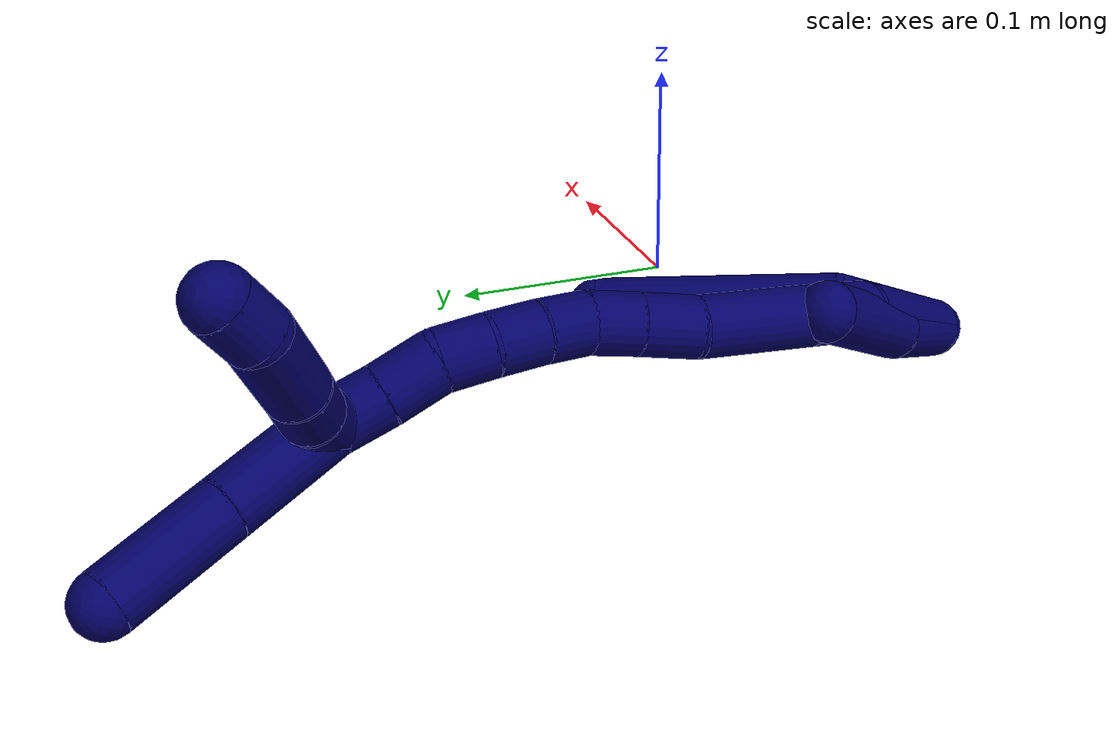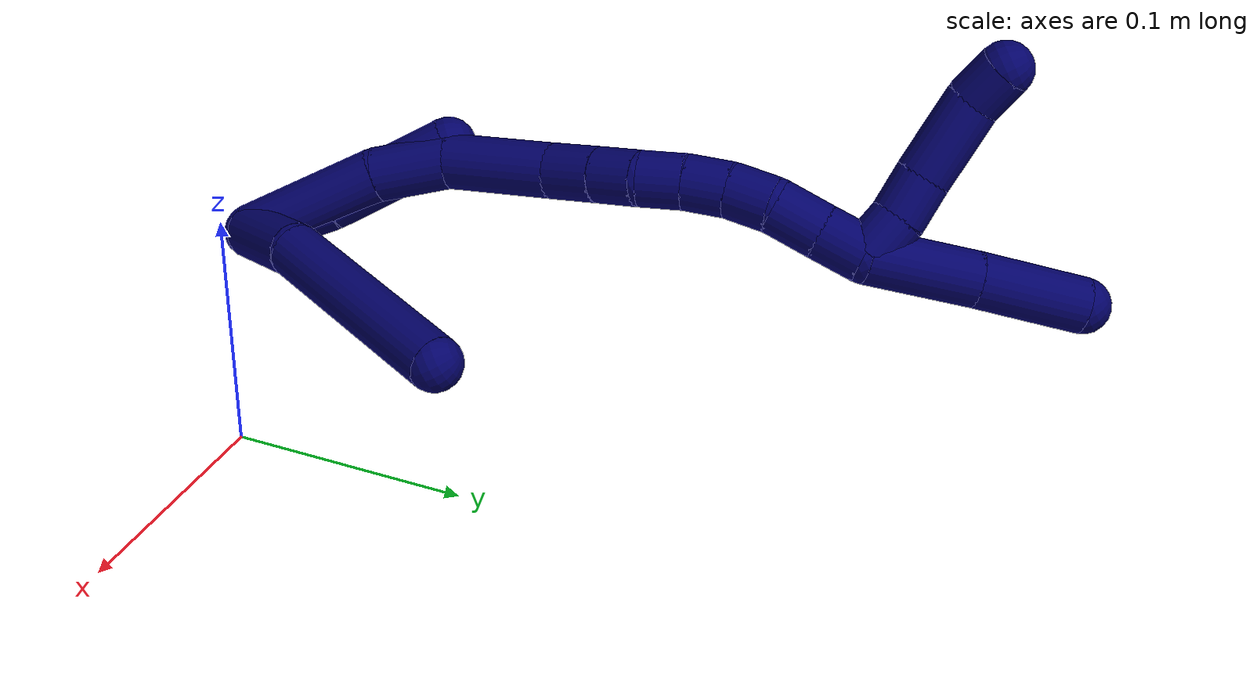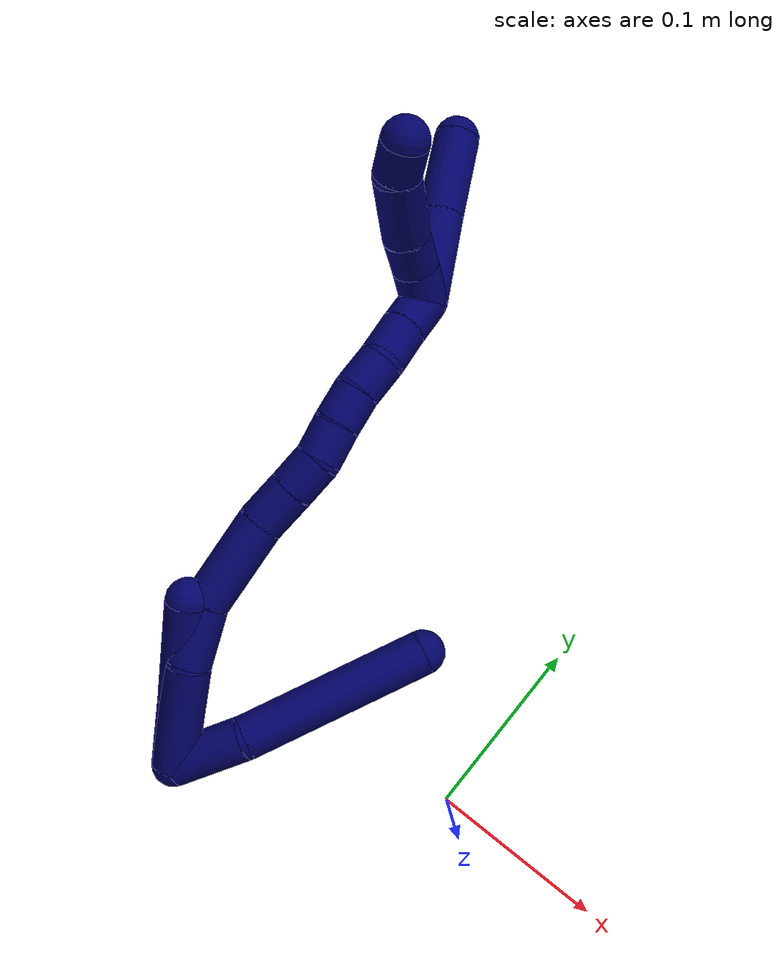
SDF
<sdf version="1.7">
 <world name="default">
  <model name="7">
   <static>0</static>
   <link name="7">
    <collision name="collision-cylinder-e_1_2_8">
     <pose>0.013727 0.011684 0.012106 -0.767661 0.684348 -0.285738</pose>
     <geometry><cylinder><radius>0.0125</radius><length>0.043428</length></cylinder></geometry>
     <surface>
      <friction><ode><mu>1.16</mu><mu2>1.16</mu2><slip1>0</slip1><slip2>0</slip2></ode></friction>
      <contact><ode><kp>1e+06</kp><kd>1</kd><max_vel>0</max_vel><min_depth>0.001</min_depth></ode></contact>
     </surface>
    </collision>
    <visual name="visual-cylinder-e_1_2_8">
     <pose>0.013727 0.011684 0.012106 -0.767661 0.684348 -0.285738</pose>
     <geometry><cylinder><radius>0.0125</radius><length>0.043428</length></cylinder></geometry>
     <material><ambient>0.003922 0 0.403922 1</ambient></material>
    </visual>
    <collision name="collision-cylinder-e_2_8_6">
     <pose>0.050832 0.063518 0.050305 -0.994498 0.454181 -0.249524</pose>
     <geometry><cylinder><radius>0.0125</radius><length>0.106572</length></cylinder></geometry>
     <surface>
      <friction><ode><mu>1.16</mu><mu2>1.16</mu2><slip1>0</slip1><slip2>0</slip2></ode></friction>
      <contact><ode><kp>1e+06</kp><kd>1</kd><max_vel>0</max_vel><min_depth>0.001</min_depth></ode></contact>
     </surface>
    </collision>
    <visual name="visual-cylinder-e_2_8_6">
     <pose>0.050832 0.063518 0.050305 -0.994498 0.454181 -0.249524</pose>
     <geometry><cylinder><radius>0.0125</radius><length>0.106572</length></cylinder></geometry>
     <material><ambient>0.003922 0 0.403922 1</ambient></material>
    </visual>
    <collision name="collision-cylinder-e_1_2_9">
     <pose>-0.002176 0.001612 0.019279 -0.083438 -0.112028 0.004681</pose>
     <geometry><cylinder><radius>0.0125</radius><length>0.038938</length></cylinder></geometry>
     <surface>
      <friction><ode><mu>1.16</mu><mu2>1.16</mu2><slip1>0</slip1><slip2>0</slip2></ode></friction>
      <contact><ode><kp>1e+06</kp><kd>1</kd><max_vel>0</max_vel><min_depth>0.001</min_depth></ode></contact>
     </surface>
    </collision>
    <visual name="visual-cylinder-e_1_2_9">
     <pose>-0.002176 0.001612 0.019279 -0.083438 -0.112028 0.004681</pose>
     <geometry><cylinder><radius>0.0125</radius><length>0.038938</length></cylinder></geometry>
     <material><ambient>0.003922 0 0.403922 1</ambient></material>
    </visual>
    <collision name="collision-cylinder-e_2_9_5">
     <pose>-0.005149 0.002529 0.069072 0.022794 -0.026083 -0.000297</pose>
     <geometry><cylinder><radius>0.0125</radius><length>0.061062</length></cylinder></geometry>
     <surface>
      <friction><ode><mu>1.16</mu><mu2>1.16</mu2><slip1>0</slip1><slip2>0</slip2></ode></friction>
      <contact><ode><kp>1e+06</kp><kd>1</kd><max_vel>0</max_vel><min_depth>0.001</min_depth></ode></contact>
     </surface>
    </collision>
    <visual name="visual-cylinder-e_2_9_5">
     <pose>-0.005149 0.002529 0.069072 0.022794 -0.026083 -0.000297</pose>
     <geometry><cylinder><radius>0.0125</radius><length>0.061062</length></cylinder></geometry>
     <material><ambient>0.003922 0 0.403922 1</ambient></material>
    </visual>
    <collision name="collision-cylinder-e_1_2_10">
     <pose>-4.4e-05 0.000769 0.032244 -0.023849 -0.001377 1.6e-05</pose>
     <geometry><cylinder><radius>0.0125</radius><length>0.064506</length></cylinder></geometry>
     <surface>
      <friction><ode><mu>1.16</mu><mu2>1.16</mu2><slip1>0</slip1><slip2>0</slip2></ode></friction>
      <contact><ode><kp>1e+06</kp><kd>1</kd><max_vel>0</max_vel><min_depth>0.001</min_depth></ode></contact>
     </surface>
    </collision>
    <visual name="visual-cylinder-e_1_2_10">
     <pose>-4.4e-05 0.000769 0.032244 -0.023849 -0.001377 1.6e-05</pose>
     <geometry><cylinder><radius>0.0125</radius><length>0.064506</length></cylinder></geometry>
     <material><ambient>0.003922 0 0.403922 1</ambient></material>
    </visual>
    <collision name="collision-cylinder-e_2_10_11">
     <pose>-0.000889 0.005817 0.081248 -0.249925 -0.046217 0.005807</pose>
     <geometry><cylinder><radius>0.0125</radius><length>0.034632</length></cylinder></geometry>
     <surface>
      <friction><ode><mu>1.16</mu><mu2>1.16</mu2><slip1>0</slip1><slip2>0</slip2></ode></friction>
      <contact><ode><kp>1e+06</kp><kd>1</kd><max_vel>0</max_vel><min_depth>0.001</min_depth></ode></contact>
     </surface>
    </collision>
    <visual name="visual-cylinder-e_2_10_11">
     <pose>-0.000889 0.005817 0.081248 -0.249925 -0.046217 0.005807</pose>
     <geometry><cylinder><radius>0.0125</radius><length>0.034632</length></cylinder></geometry>
     <material><ambient>0.003922 0 0.403922 1</ambient></material>
    </visual>
    <collision name="collision-cylinder-e_3_11_12">
     <pose>0.00142 0.023042 0.119558 -0.540999 0.123033 -0.034156</pose>
     <geometry><cylinder><radius>0.0125</radius><length>0.050663</length></cylinder></geometry>
     <surface>
      <friction><ode><mu>1.16</mu><mu2>1.16</mu2><slip1>0</slip1><slip2>0</slip2></ode></friction>
      <contact><ode><kp>1e+06</kp><kd>1</kd><max_vel>0</max_vel><min_depth>0.001</min_depth></ode></contact>
     </surface>
    </collision>
    <visual name="visual-cylinder-e_3_11_12">
     <pose>0.00142 0.023042 0.119558 -0.540999 0.123033 -0.034156</pose>
     <geometry><cylinder><radius>0.0125</radius><length>0.050663</length></cylinder></geometry>
     <material><ambient>0.003922 0 0.403922 1</ambient></material>
    </visual>
    <collision name="collision-cylinder-e_4_12_13">
     <pose>0.008034 0.042022 0.150956 -0.549662 0.294688 -0.08365</pose>
     <geometry><cylinder><radius>0.0125</radius><length>0.024141</length></cylinder></geometry>
     <surface>
      <friction><ode><mu>1.16</mu><mu2>1.16</mu2><slip1>0</slip1><slip2>0</slip2></ode></friction>
      <contact><ode><kp>1e+06</kp><kd>1</kd><max_vel>0</max_vel><min_depth>0.001</min_depth></ode></contact>
     </surface>
    </collision>
    <visual name="visual-cylinder-e_4_12_13">
     <pose>0.008034 0.042022 0.150956 -0.549662 0.294688 -0.08365</pose>
     <geometry><cylinder><radius>0.0125</radius><length>0.024141</length></cylinder></geometry>
     <material><ambient>0.003922 0 0.403922 1</ambient></material>
    </visual>
    <collision name="collision-cylinder-e_5_13_14">
     <pose>0.014324 0.053321 0.169348 -0.552271 0.27057 -0.077106</pose>
     <geometry><cylinder><radius>0.0125</radius><length>0.020827</length></cylinder></geometry>
     <surface>
      <friction><ode><mu>1.16</mu><mu2>1.16</mu2><slip1>0</slip1><slip2>0</slip2></ode></friction>
      <contact><ode><kp>1e+06</kp><kd>1</kd><max_vel>0</max_vel><min_depth>0.001</min_depth></ode></contact>
     </surface>
    </collision>
    <visual name="visual-cylinder-e_5_13_14">
     <pose>0.014324 0.053321 0.169348 -0.552271 0.27057 -0.077106</pose>
     <geometry><cylinder><radius>0.0125</radius><length>0.020827</length></cylinder></geometry>
     <material><ambient>0.003922 0 0.403922 1</ambient></material>
    </visual>
    <collision name="collision-cylinder-e_6_14_15">
     <pose>0.017111 0.063504 0.18667 -0.510745 0.000409 -0.000107</pose>
     <geometry><cylinder><radius>0.0125</radius><length>0.020126</length></cylinder></geometry>
     <surface>
      <friction><ode><mu>1.16</mu><mu2>1.16</mu2><slip1>0</slip1><slip2>0</slip2></ode></friction>
      <contact><ode><kp>1e+06</kp><kd>1</kd><max_vel>0</max_vel><min_depth>0.001</min_depth></ode></contact>
     </surface>
    </collision>
    <visual name="visual-cylinder-e_6_14_15">
     <pose>0.017111 0.063504 0.18667 -0.510745 0.000409 -0.000107</pose>
     <geometry><cylinder><radius>0.0125</radius><length>0.020126</length></cylinder></geometry>
     <material><ambient>0.003922 0 0.403922 1</ambient></material>
    </visual>
    <collision name="collision-cylinder-e_7_15_16">
     <pose>0.017066 0.074187 0.20362 -0.614339 -0.004912 0.001558</pose>
     <geometry><cylinder><radius>0.0125</radius><length>0.02</length></cylinder></geometry>
     <surface>
      <friction><ode><mu>1.16</mu><mu2>1.16</mu2><slip1>0</slip1><slip2>0</slip2></ode></friction>
      <contact><ode><kp>1e+06</kp><kd>1</kd><max_vel>0</max_vel><min_depth>0.001</min_depth></ode></contact>
     </surface>
    </collision>
    <visual name="visual-cylinder-e_7_15_16">
     <pose>0.017066 0.074187 0.20362 -0.614339 -0.004912 0.001558</pose>
     <geometry><cylinder><radius>0.0125</radius><length>0.02</length></cylinder></geometry>
     <material><ambient>0.003922 0 0.403922 1</ambient></material>
    </visual>
    <collision name="collision-cylinder-e_8_16_17">
     <pose>0.017458 0.087111 0.21919 -0.768978 0.042811 -0.017325</pose>
     <geometry><cylinder><radius>0.0125</radius><length>0.02061</length></cylinder></geometry>
     <surface>
      <friction><ode><mu>1.16</mu><mu2>1.16</mu2><slip1>0</slip1><slip2>0</slip2></ode></friction>
      <contact><ode><kp>1e+06</kp><kd>1</kd><max_vel>0</max_vel><min_depth>0.001</min_depth></ode></contact>
     </surface>
    </collision>
    <visual name="visual-cylinder-e_8_16_17">
     <pose>0.017458 0.087111 0.21919 -0.768978 0.042811 -0.017325</pose>
     <geometry><cylinder><radius>0.0125</radius><length>0.02061</length></cylinder></geometry>
     <material><ambient>0.003922 0 0.403922 1</ambient></material>
    </visual>
    <collision name="collision-cylinder-e_9_17_18">
     <pose>0.015837 0.103382 0.233339 -0.933196 -0.179895 0.090795</pose>
     <geometry><cylinder><radius>0.0125</radius><length>0.023051</length></cylinder></geometry>
     <surface>
      <friction><ode><mu>1.16</mu><mu2>1.16</mu2><slip1>0</slip1><slip2>0</slip2></ode></friction>
      <contact><ode><kp>1e+06</kp><kd>1</kd><max_vel>0</max_vel><min_depth>0.001</min_depth></ode></contact>
     </surface>
    </collision>
    <visual name="visual-cylinder-e_9_17_18">
     <pose>0.015837 0.103382 0.233339 -0.933196 -0.179895 0.090795</pose>
     <geometry><cylinder><radius>0.0125</radius><length>0.023051</length></cylinder></geometry>
     <material><ambient>0.003922 0 0.403922 1</ambient></material>
    </visual>
    <collision name="collision-cylinder-e_10_18_1">
     <pose>0.012469 0.120961 0.246536 -0.92004 -0.122097 0.060553</pose>
     <geometry><cylinder><radius>0.0125</radius><length>0.021444</length></cylinder></geometry>
     <surface>
      <friction><ode><mu>1.16</mu><mu2>1.16</mu2><slip1>0</slip1><slip2>0</slip2></ode></friction>
      <contact><ode><kp>1e+06</kp><kd>1</kd><max_vel>0</max_vel><min_depth>0.001</min_depth></ode></contact>
     </surface>
    </collision>
    <visual name="visual-cylinder-e_10_18_1">
     <pose>0.012469 0.120961 0.246536 -0.92004 -0.122097 0.060553</pose>
     <geometry><cylinder><radius>0.0125</radius><length>0.021444</length></cylinder></geometry>
     <material><ambient>0.003922 0 0.403922 1</ambient></material>
    </visual>
    <collision name="collision-cylinder-e_1_1_19">
     <pose>0.0009 0.142781 0.271705 -0.61955 -0.419752 0.136152</pose>
     <geometry><cylinder><radius>0.0125</radius><length>0.050366</length></cylinder></geometry>
     <surface>
      <friction><ode><mu>1.16</mu><mu2>1.16</mu2><slip1>0</slip1><slip2>0</slip2></ode></friction>
      <contact><ode><kp>1e+06</kp><kd>1</kd><max_vel>0</max_vel><min_depth>0.001</min_depth></ode></contact>
     </surface>
    </collision>
    <visual name="visual-cylinder-e_1_1_19">
     <pose>0.0009 0.142781 0.271705 -0.61955 -0.419752 0.136152</pose>
     <geometry><cylinder><radius>0.0125</radius><length>0.050366</length></cylinder></geometry>
     <material><ambient>0.003922 0 0.403922 1</ambient></material>
    </visual>
    <collision name="collision-cylinder-e_2_19_4">
     <pose>-0.019283 0.169849 0.308577 -0.647072 -0.411227 0.139641</pose>
     <geometry><cylinder><radius>0.0125</radius><length>0.049634</length></cylinder></geometry>
     <surface>
      <friction><ode><mu>1.16</mu><mu2>1.16</mu2><slip1>0</slip1><slip2>0</slip2></ode></friction>
      <contact><ode><kp>1e+06</kp><kd>1</kd><max_vel>0</max_vel><min_depth>0.001</min_depth></ode></contact>
     </surface>
    </collision>
    <visual name="visual-cylinder-e_2_19_4">
     <pose>-0.019283 0.169849 0.308577 -0.647072 -0.411227 0.139641</pose>
     <geometry><cylinder><radius>0.0125</radius><length>0.049634</length></cylinder></geometry>
     <material><ambient>0.003922 0 0.403922 1</ambient></material>
    </visual>
    <collision name="collision-cylinder-e_1_1_20">
     <pose>0.009772 0.12494 0.262202 0.453013 -0.134807 -0.031112</pose>
     <geometry><cylinder><radius>0.0125</radius><length>0.020696</length></cylinder></geometry>
     <surface>
      <friction><ode><mu>1.16</mu><mu2>1.16</mu2><slip1>0</slip1><slip2>0</slip2></ode></friction>
      <contact><ode><kp>1e+06</kp><kd>1</kd><max_vel>0</max_vel><min_depth>0.001</min_depth></ode></contact>
     </surface>
    </collision>
    <visual name="visual-cylinder-e_1_1_20">
     <pose>0.009772 0.12494 0.262202 0.453013 -0.134807 -0.031112</pose>
     <geometry><cylinder><radius>0.0125</radius><length>0.020696</length></cylinder></geometry>
     <material><ambient>0.003922 0 0.403922 1</ambient></material>
    </visual>
    <collision name="collision-cylinder-e_2_20_21">
     <pose>0.008371 0.114515 0.280055 0.602415 -0.001027 -0.000319</pose>
     <geometry><cylinder><radius>0.0125</radius><length>0.020955</length></cylinder></geometry>
     <surface>
      <friction><ode><mu>1.16</mu><mu2>1.16</mu2><slip1>0</slip1><slip2>0</slip2></ode></friction>
      <contact><ode><kp>1e+06</kp><kd>1</kd><max_vel>0</max_vel><min_depth>0.001</min_depth></ode></contact>
     </surface>
    </collision>
    <visual name="visual-cylinder-e_2_20_21">
     <pose>0.008371 0.114515 0.280055 0.602415 -0.001027 -0.000319</pose>
     <geometry><cylinder><radius>0.0125</radius><length>0.020955</length></cylinder></geometry>
     <material><ambient>0.003922 0 0.403922 1</ambient></material>
    </visual>
    <collision name="collision-cylinder-e_3_21_22">
     <pose>0.010236 0.09867 0.304966 0.546774 0.098133 0.027538</pose>
     <geometry><cylinder><radius>0.0125</radius><length>0.038296</length></cylinder></geometry>
     <surface>
      <friction><ode><mu>1.16</mu><mu2>1.16</mu2><slip1>0</slip1><slip2>0</slip2></ode></friction>
      <contact><ode><kp>1e+06</kp><kd>1</kd><max_vel>0</max_vel><min_depth>0.001</min_depth></ode></contact>
     </surface>
    </collision>
    <visual name="visual-cylinder-e_3_21_22">
     <pose>0.010236 0.09867 0.304966 0.546774 0.098133 0.027538</pose>
     <geometry><cylinder><radius>0.0125</radius><length>0.038296</length></cylinder></geometry>
     <material><ambient>0.003922 0 0.403922 1</ambient></material>
    </visual>
    <collision name="collision-cylinder-e_4_22_3">
     <pose>0.01525 0.085943 0.33034 0.300587 0.318325 0.048607</pose>
     <geometry><cylinder><radius>0.0125</radius><length>0.020053</length></cylinder></geometry>
     <surface>
      <friction><ode><mu>1.16</mu><mu2>1.16</mu2><slip1>0</slip1><slip2>0</slip2></ode></friction>
      <contact><ode><kp>1e+06</kp><kd>1</kd><max_vel>0</max_vel><min_depth>0.001</min_depth></ode></contact>
     </surface>
    </collision>
    <visual name="visual-cylinder-e_4_22_3">
     <pose>0.01525 0.085943 0.33034 0.300587 0.318325 0.048607</pose>
     <geometry><cylinder><radius>0.0125</radius><length>0.020053</length></cylinder></geometry>
     <material><ambient>0.003922 0 0.403922 1</ambient></material>
    </visual>
    <collision name="collision-sphere-3">
     <pose>0.018388 0.083123 0.339435 0 -0 0</pose>
     <geometry><sphere><radius>0.0125</radius></sphere></geometry>
     <surface>
      <friction><ode><mu>1.16</mu><mu2>1.16</mu2><slip1>0</slip1><slip2>0</slip2></ode></friction>
      <contact><ode><kp>1e+06</kp><kd>1</kd><max_vel>0</max_vel><min_depth>0.001</min_depth></ode></contact>
     </surface>
    </collision>
    <visual name="visual-sphere-3">
     <pose>0.018388 0.083123 0.339435 0 -0 0</pose>
     <geometry><sphere><radius>0.0125</radius></sphere></geometry>
     <material><ambient>0.003922 0 0.403922 1</ambient></material>
    </visual>
    <collision name="collision-sphere-22">
     <pose>0.012112 0.088762 0.321244 0 -0 0</pose>
     <geometry><sphere><radius>0.0125</radius></sphere></geometry>
     <surface>
      <friction><ode><mu>1.16</mu><mu2>1.16</mu2><slip1>0</slip1><slip2>0</slip2></ode></friction>
      <contact><ode><kp>1e+06</kp><kd>1</kd><max_vel>0</max_vel><min_depth>0.001</min_depth></ode></contact>
     </surface>
    </collision>
    <visual name="visual-sphere-22">
     <pose>0.012112 0.088762 0.321244 0 -0 0</pose>
     <geometry><sphere><radius>0.0125</radius></sphere></geometry>
     <material><ambient>0.003922 0 0.403922 1</ambient></material>
    </visual>
    <collision name="collision-sphere-21">
     <pose>0.00836 0.108578 0.288688 0 -0 0</pose>
     <geometry><sphere><radius>0.0125</radius></sphere></geometry>
     <surface>
      <friction><ode><mu>1.16</mu><mu2>1.16</mu2><slip1>0</slip1><slip2>0</slip2></ode></friction>
      <contact><ode><kp>1e+06</kp><kd>1</kd><max_vel>0</max_vel><min_depth>0.001</min_depth></ode></contact>
     </surface>
    </collision>
    <visual name="visual-sphere-21">
     <pose>0.00836 0.108578 0.288688 0 -0 0</pose>
     <geometry><sphere><radius>0.0125</radius></sphere></geometry>
     <material><ambient>0.003922 0 0.403922 1</ambient></material>
    </visual>
    <collision name="collision-sphere-20">
     <pose>0.008381 0.120452 0.271422 0 -0 0</pose>
     <geometry><sphere><radius>0.0125</radius></sphere></geometry>
     <surface>
      <friction><ode><mu>1.16</mu><mu2>1.16</mu2><slip1>0</slip1><slip2>0</slip2></ode></friction>
      <contact><ode><kp>1e+06</kp><kd>1</kd><max_vel>0</max_vel><min_depth>0.001</min_depth></ode></contact>
     </surface>
    </collision>
    <visual name="visual-sphere-20">
     <pose>0.008381 0.120452 0.271422 0 -0 0</pose>
     <geometry><sphere><radius>0.0125</radius></sphere></geometry>
     <material><ambient>0.003922 0 0.403922 1</ambient></material>
    </visual>
    <collision name="collision-sphere-4">
     <pose>-0.029203 0.183562 0.326727 0 -0 0</pose>
     <geometry><sphere><radius>0.0125</radius></sphere></geometry>
     <surface>
      <friction><ode><mu>1.16</mu><mu2>1.16</mu2><slip1>0</slip1><slip2>0</slip2></ode></friction>
      <contact><ode><kp>1e+06</kp><kd>1</kd><max_vel>0</max_vel><min_depth>0.001</min_depth></ode></contact>
     </surface>
    </collision>
    <visual name="visual-sphere-4">
     <pose>-0.029203 0.183562 0.326727 0 -0 0</pose>
     <geometry><sphere><radius>0.0125</radius></sphere></geometry>
     <material><ambient>0.003922 0 0.403922 1</ambient></material>
    </visual>
    <collision name="collision-sphere-10">
     <pose>-8.9e-05 0.001538 0.064487 0 -0 0</pose>
     <geometry><sphere><radius>0.0125</radius></sphere></geometry>
     <surface>
      <friction><ode><mu>1.16</mu><mu2>1.16</mu2><slip1>0</slip1><slip2>0</slip2></ode></friction>
      <contact><ode><kp>1e+06</kp><kd>1</kd><max_vel>0</max_vel><min_depth>0.001</min_depth></ode></contact>
     </surface>
    </collision>
    <visual name="visual-sphere-10">
     <pose>-8.9e-05 0.001538 0.064487 0 -0 0</pose>
     <geometry><sphere><radius>0.0125</radius></sphere></geometry>
     <material><ambient>0.003922 0 0.403922 1</ambient></material>
    </visual>
    <collision name="collision-sphere-5">
     <pose>-0.005945 0.001834 0.099585 0 -0 0</pose>
     <geometry><sphere><radius>0.0125</radius></sphere></geometry>
     <surface>
      <friction><ode><mu>1.16</mu><mu2>1.16</mu2><slip1>0</slip1><slip2>0</slip2></ode></friction>
      <contact><ode><kp>1e+06</kp><kd>1</kd><max_vel>0</max_vel><min_depth>0.001</min_depth></ode></contact>
     </surface>
    </collision>
    <visual name="visual-sphere-5">
     <pose>-0.005945 0.001834 0.099585 0 -0 0</pose>
     <geometry><sphere><radius>0.0125</radius></sphere></geometry>
     <material><ambient>0.003922 0 0.403922 1</ambient></material>
    </visual>
    <collision name="collision-sphere-6">
     <pose>0.07421 0.103668 0.076398 0 -0 0</pose>
     <geometry><sphere><radius>0.0125</radius></sphere></geometry>
     <surface>
      <friction><ode><mu>1.16</mu><mu2>1.16</mu2><slip1>0</slip1><slip2>0</slip2></ode></friction>
      <contact><ode><kp>1e+06</kp><kd>1</kd><max_vel>0</max_vel><min_depth>0.001</min_depth></ode></contact>
     </surface>
    </collision>
    <visual name="visual-sphere-6">
     <pose>0.07421 0.103668 0.076398 0 -0 0</pose>
     <geometry><sphere><radius>0.0125</radius></sphere></geometry>
     <material><ambient>0.003922 0 0.403922 1</ambient></material>
    </visual>
    <collision name="collision-sphere-9">
     <pose>-0.004353 0.003225 0.038559 0 -0 0</pose>
     <geometry><sphere><radius>0.0125</radius></sphere></geometry>
     <surface>
      <friction><ode><mu>1.16</mu><mu2>1.16</mu2><slip1>0</slip1><slip2>0</slip2></ode></friction>
      <contact><ode><kp>1e+06</kp><kd>1</kd><max_vel>0</max_vel><min_depth>0.001</min_depth></ode></contact>
     </surface>
    </collision>
    <visual name="visual-sphere-9">
     <pose>-0.004353 0.003225 0.038559 0 -0 0</pose>
     <geometry><sphere><radius>0.0125</radius></sphere></geometry>
     <material><ambient>0.003922 0 0.403922 1</ambient></material>
    </visual>
    <collision name="collision-sphere-2">
     <geometry><sphere><radius>0.0125</radius></sphere></geometry>
     <surface>
      <friction><ode><mu>1.16</mu><mu2>1.16</mu2><slip1>0</slip1><slip2>0</slip2></ode></friction>
      <contact><ode><kp>1e+06</kp><kd>1</kd><max_vel>0</max_vel><min_depth>0.001</min_depth></ode></contact>
     </surface>
    </collision>
    <visual name="visual-sphere-2">
     <geometry><sphere><radius>0.0125</radius></sphere></geometry>
     <material><ambient>0.003922 0 0.403922 1</ambient></material>
    </visual>
    <collision name="collision-sphere-19">
     <pose>-0.009363 0.156135 0.290428 0 -0 0</pose>
     <geometry><sphere><radius>0.0125</radius></sphere></geometry>
     <surface>
      <friction><ode><mu>1.16</mu><mu2>1.16</mu2><slip1>0</slip1><slip2>0</slip2></ode></friction>
      <contact><ode><kp>1e+06</kp><kd>1</kd><max_vel>0</max_vel><min_depth>0.001</min_depth></ode></contact>
     </surface>
    </collision>
    <visual name="visual-sphere-19">
     <pose>-0.009363 0.156135 0.290428 0 -0 0</pose>
     <geometry><sphere><radius>0.0125</radius></sphere></geometry>
     <material><ambient>0.003922 0 0.403922 1</ambient></material>
    </visual>
    <collision name="collision-sphere-8">
     <pose>0.027454 0.023368 0.024212 0 -0 0</pose>
     <geometry><sphere><radius>0.0125</radius></sphere></geometry>
     <surface>
      <friction><ode><mu>1.16</mu><mu2>1.16</mu2><slip1>0</slip1><slip2>0</slip2></ode></friction>
      <contact><ode><kp>1e+06</kp><kd>1</kd><max_vel>0</max_vel><min_depth>0.001</min_depth></ode></contact>
     </surface>
    </collision>
    <visual name="visual-sphere-8">
     <pose>0.027454 0.023368 0.024212 0 -0 0</pose>
     <geometry><sphere><radius>0.0125</radius></sphere></geometry>
     <material><ambient>0.003922 0 0.403922 1</ambient></material>
    </visual>
    <collision name="collision-sphere-11">
     <pose>-0.001689 0.010095 0.098008 0 -0 0</pose>
     <geometry><sphere><radius>0.0125</radius></sphere></geometry>
     <surface>
      <friction><ode><mu>1.16</mu><mu2>1.16</mu2><slip1>0</slip1><slip2>0</slip2></ode></friction>
      <contact><ode><kp>1e+06</kp><kd>1</kd><max_vel>0</max_vel><min_depth>0.001</min_depth></ode></contact>
     </surface>
    </collision>
    <visual name="visual-sphere-11">
     <pose>-0.001689 0.010095 0.098008 0 -0 0</pose>
     <geometry><sphere><radius>0.0125</radius></sphere></geometry>
     <material><ambient>0.003922 0 0.403922 1</ambient></material>
    </visual>
    <collision name="collision-sphere-12">
     <pose>0.004529 0.035988 0.141108 0 -0 0</pose>
     <geometry><sphere><radius>0.0125</radius></sphere></geometry>
     <surface>
      <friction><ode><mu>1.16</mu><mu2>1.16</mu2><slip1>0</slip1><slip2>0</slip2></ode></friction>
      <contact><ode><kp>1e+06</kp><kd>1</kd><max_vel>0</max_vel><min_depth>0.001</min_depth></ode></contact>
     </surface>
    </collision>
    <visual name="visual-sphere-12">
     <pose>0.004529 0.035988 0.141108 0 -0 0</pose>
     <geometry><sphere><radius>0.0125</radius></sphere></geometry>
     <material><ambient>0.003922 0 0.403922 1</ambient></material>
    </visual>
    <collision name="collision-sphere-13">
     <pose>0.01154 0.048056 0.160805 0 -0 0</pose>
     <geometry><sphere><radius>0.0125</radius></sphere></geometry>
     <surface>
      <friction><ode><mu>1.16</mu><mu2>1.16</mu2><slip1>0</slip1><slip2>0</slip2></ode></friction>
      <contact><ode><kp>1e+06</kp><kd>1</kd><max_vel>0</max_vel><min_depth>0.001</min_depth></ode></contact>
     </surface>
    </collision>
    <visual name="visual-sphere-13">
     <pose>0.01154 0.048056 0.160805 0 -0 0</pose>
     <geometry><sphere><radius>0.0125</radius></sphere></geometry>
     <material><ambient>0.003922 0 0.403922 1</ambient></material>
    </visual>
    <collision name="collision-sphere-14">
     <pose>0.017107 0.058585 0.177891 0 -0 0</pose>
     <geometry><sphere><radius>0.0125</radius></sphere></geometry>
     <surface>
      <friction><ode><mu>1.16</mu><mu2>1.16</mu2><slip1>0</slip1><slip2>0</slip2></ode></friction>
      <contact><ode><kp>1e+06</kp><kd>1</kd><max_vel>0</max_vel><min_depth>0.001</min_depth></ode></contact>
     </surface>
    </collision>
    <visual name="visual-sphere-14">
     <pose>0.017107 0.058585 0.177891 0 -0 0</pose>
     <geometry><sphere><radius>0.0125</radius></sphere></geometry>
     <material><ambient>0.003922 0 0.403922 1</ambient></material>
    </visual>
    <collision name="collision-sphere-15">
     <pose>0.017115 0.068423 0.195449 0 -0 0</pose>
     <geometry><sphere><radius>0.0125</radius></sphere></geometry>
     <surface>
      <friction><ode><mu>1.16</mu><mu2>1.16</mu2><slip1>0</slip1><slip2>0</slip2></ode></friction>
      <contact><ode><kp>1e+06</kp><kd>1</kd><max_vel>0</max_vel><min_depth>0.001</min_depth></ode></contact>
     </surface>
    </collision>
    <visual name="visual-sphere-15">
     <pose>0.017115 0.068423 0.195449 0 -0 0</pose>
     <geometry><sphere><radius>0.0125</radius></sphere></geometry>
     <material><ambient>0.003922 0 0.403922 1</ambient></material>
    </visual>
    <collision name="collision-sphere-16">
     <pose>0.017017 0.079952 0.211792 0 -0 0</pose>
     <geometry><sphere><radius>0.0125</radius></sphere></geometry>
     <surface>
      <friction><ode><mu>1.16</mu><mu2>1.16</mu2><slip1>0</slip1><slip2>0</slip2></ode></friction>
      <contact><ode><kp>1e+06</kp><kd>1</kd><max_vel>0</max_vel><min_depth>0.001</min_depth></ode></contact>
     </surface>
    </collision>
    <visual name="visual-sphere-16">
     <pose>0.017017 0.079952 0.211792 0 -0 0</pose>
     <geometry><sphere><radius>0.0125</radius></sphere></geometry>
     <material><ambient>0.003922 0 0.403922 1</ambient></material>
    </visual>
    <collision name="collision-sphere-17">
     <pose>0.017899 0.09427 0.226589 0 -0 0</pose>
     <geometry><sphere><radius>0.0125</radius></sphere></geometry>
     <surface>
      <friction><ode><mu>1.16</mu><mu2>1.16</mu2><slip1>0</slip1><slip2>0</slip2></ode></friction>
      <contact><ode><kp>1e+06</kp><kd>1</kd><max_vel>0</max_vel><min_depth>0.001</min_depth></ode></contact>
     </surface>
    </collision>
    <visual name="visual-sphere-17">
     <pose>0.017899 0.09427 0.226589 0 -0 0</pose>
     <geometry><sphere><radius>0.0125</radius></sphere></geometry>
     <material><ambient>0.003922 0 0.403922 1</ambient></material>
    </visual>
    <collision name="collision-sphere-18">
     <pose>0.013775 0.112494 0.240089 0 -0 0</pose>
     <geometry><sphere><radius>0.0125</radius></sphere></geometry>
     <surface>
      <friction><ode><mu>1.16</mu><mu2>1.16</mu2><slip1>0</slip1><slip2>0</slip2></ode></friction>
      <contact><ode><kp>1e+06</kp><kd>1</kd><max_vel>0</max_vel><min_depth>0.001</min_depth></ode></contact>
     </surface>
    </collision>
    <visual name="visual-sphere-18">
     <pose>0.013775 0.112494 0.240089 0 -0 0</pose>
     <geometry><sphere><radius>0.0125</radius></sphere></geometry>
     <material><ambient>0.003922 0 0.403922 1</ambient></material>
    </visual>
    <collision name="collision-sphere-1">
     <pose>0.011163 0.129428 0.252983 0 -0 0</pose>
     <geometry><sphere><radius>0.0125</radius></sphere></geometry>
     <surface>
      <friction><ode><mu>1.16</mu><mu2>1.16</mu2><slip1>0</slip1><slip2>0</slip2></ode></friction>
      <contact><ode><kp>1e+06</kp><kd>1</kd><max_vel>0</max_vel><min_depth>0.001</min_depth></ode></contact>
     </surface>
    </collision>
    <visual name="visual-sphere-1">
     <pose>0.011163 0.129428 0.252983 0 -0 0</pose>
     <geometry><sphere><radius>0.0125</radius></sphere></geometry>
     <material><ambient>0.003922 0 0.403922 1</ambient></material>
    </visual>
    <inertial>
     <pose>0.010648 0.062241 0.147451 0 -0 0</pose>
     <mass>0.75</mass>
     <inertia>
      <ixx>0.000194</ixx>
      <ixy>0</ixy>
      <ixz>0</ixz>
      <iyy>0.000176</iyy>
      <iyz>0</iyz>
      <izz>-0.000105</izz>
     </inertia>
    </inertial>
   </link>
   <pose>-0.13019 -0.07587 0.011496 -1.0046 -0.5907 0.153384</pose>
  </model>
 </world>
</sdf>
